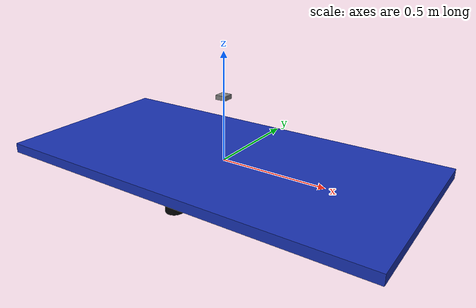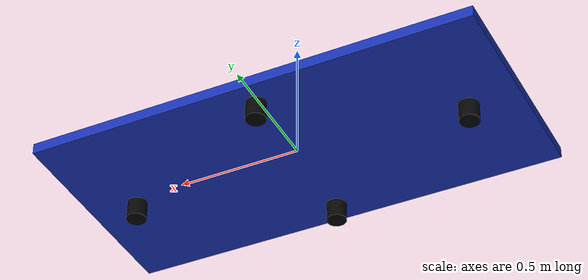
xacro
<?xml version="1.0"?>
<robot xmlns:xacro="http://www.ros.org/wiki/xacro" name="hugr_asv">
  <xacro:arg name="sim" default="true"/>

  <!-- Relative includes -->
  <xacro:include filename="parts/trimaran_hull.xacro"/>
  <xacro:include filename="parts/thrusters.xacro"/>
  <xacro:include filename="parts/sensors.xacro"/>

  <!-- Basis-link -->
  <link name="base_link"/>

  <!-- Skrog (fast til base_link) -->
  <xacro:trimaran_hull parent="base_link" length="1.8" width="0.9" height="0.45"/>

  <!-- Thrusters (4 stk) -->
  <xacro:thrusters_trimaran parent="base_link"
                            surge_front_xyz="0.70 0.00 -0.05"
                            surge_rear_xyz="-0.70 0.00 -0.05"
                            sway_port_xyz="0.00 0.35 -0.05"
                            sway_starboard_xyz="0.00 -0.35 -0.05"/>

  <!-- Sensor-stubs -->
  <xacro:sensors parent="base_link"/>

  <!-- Felles joint-interfaces (må matche joint-navnene over) -->
  <xacro:macro name="thruster_interfaces">
    <joint name="thruster_surge_front_joint">
      <command_interface name="position"/>
      <state_interface   name="position"/>
    </joint>
    <joint name="thruster_surge_rear_joint">
      <command_interface name="position"/>
      <state_interface   name="position"/>
    </joint>
    <joint name="thruster_sway_port_joint">
      <command_interface name="position"/>
      <state_interface   name="position"/>
    </joint>
    <joint name="thruster_sway_starboard_joint">
      <command_interface name="position"/>
      <state_interface   name="position"/>
    </joint>
  </xacro:macro>

  <!-- ros2_control: SIM = mock hardware, HW = seriell plugin -->
  <xacro:if value="$(arg sim)">
    <ros2_control name="hugr_thrusters" type="system">
      <hardware>
        <plugin>mock_components/GenericSystem</plugin>
        <param name="mock_sensor_commands">true</param>
      </hardware>
      <xacro:thruster_interfaces/>
    </ros2_control>
  </xacro:if>

  <!-- Gazebo ros2_control plugin (kun i sim) -->
  <gazebo>
    <plugin name="gazebo_ros2_control" filename="libgazebo_ros2_control.so">
    </plugin>
  </gazebo>

  <xacro:unless value="$(arg sim)">
    <ros2_control name="hugr_thrusters" type="system">
      <hardware>
        <!-- Viktig: :: (ikke /) -->
        <plugin>hugr_hardware::SerialThrusterInterface</plugin>
        <param name="port">/dev/ttyUSB0</param>
        <param name="baudrate">115200</param>
      </hardware>
      <xacro:thruster_interfaces/>
    </ros2_control>
  </xacro:unless>

</robot>

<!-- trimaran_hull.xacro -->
<robot xmlns:xacro="http://www.ros.org/wiki/xacro">
  <!-- Lager et enkelt skrog som egen link med fast joint til base_link -->
  <xacro:macro name="trimaran_hull" params="parent length:=1.8 width:=0.9 height:=0.45">
    <link name="hull_link">
      <inertial>
        <mass value="50.0"/>
        <origin xyz="0 0 0" rpy="0 0 0"/>
        <inertia ixx="2.0" iyy="2.0" izz="2.0" ixy="0" ixz="0" iyz="0"/>
      </inertial>
      <visual>
        <origin xyz="0 0 0" rpy="0 0 0"/>
        <geometry>
          <box size="${length} ${width} ${height/10.0}"/>
        </geometry>
        <material name="hull_blue"><color rgba="0.1 0.2 0.7 1.0"/></material>
      </visual>
      <collision>
        <origin xyz="0 0 0" rpy="0 0 0"/>
        <geometry>
          <box size="${length} ${width} ${height/10.0}"/>
        </geometry>
      </collision>
    </link>

    <joint name="hull_fixed" type="fixed">
      <parent link="${parent}"/>
      <child link="hull_link"/>
      <origin xyz="0 0 0" rpy="0 0 0"/>
    </joint>
  </xacro:macro>
</robot>

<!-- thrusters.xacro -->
<robot xmlns:xacro="http://www.ros.org/wiki/xacro">
  <!-- Enkel thruster-modul + plugin per thruster som kan motta Wrench i Gazebo -->

  <xacro:macro name="thruster" params="name parent xyz:='0 0 0' rpy:='0 0 0' axis:='1 0 0'">
    <link name="${name}_link">
      <inertial>
        <mass value="0.4"/>
        <origin xyz="0 0 0" rpy="0 0 0"/>
        <inertia ixx="0.001" iyy="0.001" izz="0.001" ixy="0" ixz="0" iyz="0"/>
      </inertial>
      <visual>
        <origin xyz="0 0 0" rpy="0 0 0"/>
        <geometry>
          <cylinder radius="0.04" length="0.10"/>
        </geometry>
        <material name="black"><color rgba="0.02 0.02 0.02 1.0"/></material>
      </visual>
      <collision>
        <origin xyz="0 0 0" rpy="0 0 0"/>
        <geometry>
          <cylinder radius="0.04" length="0.10"/>
        </geometry>
      </collision>
    </link>

    <joint name="${name}_joint" type="continuous">
      <parent link="${parent}"/>
      <child link="${name}_link"/>
      <origin xyz="${xyz}" rpy="${rpy}"/>
      <axis xyz="${axis}"/>
    </joint>

    <!-- Gazebo: Force-plugin som lytter på topic ~/wrench (remappet under) -->
    <gazebo reference="${name}_link">
      <plugin name="${name}_force" filename="libgazebo_ros_force_system.so">
        <ros>
          <!-- vi remapper slik at hver thruster får sin egen topic -->
          <remapping>~/force:=/thrust/${name}</remapping>
        </ros>
      </plugin>
    </gazebo>
  </xacro:macro>

  <!-- 4 thrusters for Hugr ASV (2 i surge, 2 i sway) -->
  <xacro:macro name="thrusters_trimaran"
               params="parent
                       surge_front_xyz:='0.70 0.00 -0.05'
                       surge_rear_xyz:='-0.70 0.00 -0.05'
                       sway_port_xyz:='0.00 0.35 -0.05'
                       sway_starboard_xyz:='0.00 -0.35 -0.05'">

    <xacro:thruster name="thruster_surge_front" parent="${parent}" xyz="${surge_front_xyz}" axis="1 0 0"/>
    <xacro:thruster name="thruster_surge_rear"  parent="${parent}" xyz="${surge_rear_xyz}"  axis="1 0 0"/>

    <xacro:thruster name="thruster_sway_port"  parent="${parent}" xyz="${sway_port_xyz}"  axis="0 1 0"/>
    <xacro:thruster name="thruster_sway_starboard" parent="${parent}" xyz="${sway_starboard_xyz}" axis="0 1 0"/>
  </xacro:macro>
</robot>

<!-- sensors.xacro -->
<robot xmlns:xacro="http://www.ros.org/wiki/xacro">
  <xacro:macro name="sensors" params="parent">
    <!-- IMU/GNSS stub på toppen av skroget -->
    <link name="imu_link">
      <visual>
        <origin xyz="0 0 0.15" rpy="0 0 0"/>
        <geometry><box size="0.05 0.05 0.02"/></geometry>
        <material name="grey"><color rgba="0.5 0.5 0.5 1.0"/></material>
      </visual>
    </link>
    <joint name="imu_joint" type="fixed">
      <parent link="${parent}"/>
      <child link="imu_link"/>
      <origin xyz="0 0 0.15" rpy="0 0 0"/>
    </joint>
  </xacro:macro>
</robot>
